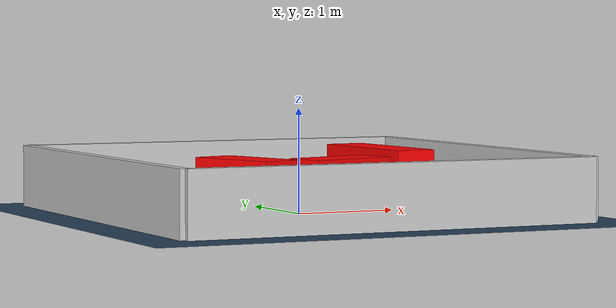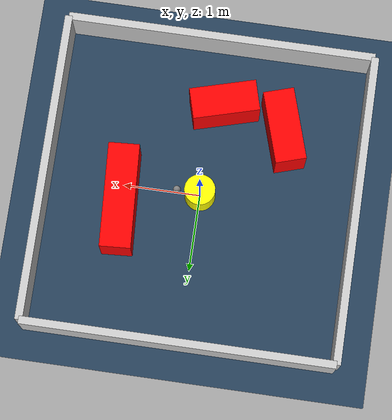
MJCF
<?xml version="1.0" ?>
<mujoco model="generated_environment">
  <option timestep="0.01" integrator="RK4" cone="elliptic"/>
  <default>
    <geom density="1"/>
  </default>
  <asset>
    <texture builtin="gradient" height="3072" rgb1="0.3 0.5 0.7" rgb2="0 0 0" type="skybox" width="512"/>
    <texture builtin="checker" height="300" mark="edge" markrgb="0.8 0.8 0.8" name="groundplane" rgb1="0.2 0.3 0.4" rgb2="0.1 0.2 0.3" type="2d" width="300"/>
    <material name="groundplane" reflectance="0.2" texrepeat="5 5" texture="groundplane" texuniform="true"/>
    <material name="robot" rgba="0.0 1.0 0.0 1"/>
  </asset>
  <worldbody>
    <light dir="0 0 -1" directional="true" pos="0 0 1.5"/>
    <geom condim="4" friction="1.0 0.005 0.001" material="groundplane" name="floor" size="0 0 0.05" type="plane"/>
    <body name="walls">
      <geom name="wall_1" condim="4" pos="-2.0 0.0 0.3" rgba="0.800000011920929 0.800000011920929 0.800000011920929 1.0" size="0.05 2.0 0.3" type="box"/>
      <geom name="wall_2" condim="4" pos="2.0 0.0 0.3" rgba="0.800000011920929 0.800000011920929 0.800000011920929 1.0" size="0.05 2.0 0.3" type="box"/>
      <geom name="wall_3" condim="4" pos="0.0 -2.0 0.3" rgba="0.800000011920929 0.800000011920929 0.800000011920929 1.0" size="2.0 0.05 0.3" type="box"/>
      <geom name="wall_4" condim="4" pos="0.0 2.0 0.3" rgba="0.800000011920929 0.800000011920929 0.800000011920929 1.0" size="2.0 0.05 0.3" type="box"/>
    </body>
    <body name="robot">
      <joint name="joint_x" type="slide" pos="0 0 0" axis="1 0 0"/>
      <joint name="joint_y" type="slide" pos="0 0 0" axis="0 1 0"/>
      <geom name="robot" type="sphere" pos="0.3 0.0 0.2" size="0.05" mass="5." friction="1.0 0.005 0.0001" condim="4" rgba="0.5 0.5 0.5 1.0"/>
      <site name="sensor_ball"/>
    </body>
    <body name="obstacle_movable_1">
      <geom name="obstacle_movable_1" condim="4" pos="0.0 0.0 0.2" euler="0 0 0.0" friction="1.0 0.005 0.001" rgba="1.0 1.0 0.0 1.0" size="0.2 0.2 0.0" type="cylinder" mass="0.1"/>
      <joint type="free"/>
    </body>
    <body name="obstacle_2_static">
      <geom name="obstacle_2_static" condim="4" pos="-0.9607495697098816 -0.9458958273833117 0.3" euler="0 0 287.40686986890785" friction="1.0 0.005 0.001" rgba="1 0 0 1" size="0.4703671472264417 0.2 0.3" type="box"/>
    </body>
    <body name="obstacle_3_static">
      <geom name="obstacle_3_static" condim="4" pos="-0.15296307517779018 -1.1776234336637716 0.3" euler="0 0 195.76480921742282" friction="1.0 0.005 0.001" rgba="1 0 0 1" size="0.43214138690232545 0.2 0.3" type="box"/>
    </body>
    <body name="obstacle_4_static">
      <geom name="obstacle_4_static" condim="4" pos="0.9926105251571449 0.2533799011879585 0.3" euler="0 0 273.54258074270956" friction="1.0 0.005 0.001" rgba="1 0 0 1" size="0.6735679766269776 0.2 0.3" type="box"/>
    </body>
  </worldbody>
  <actuator>
    <motor name="actuator_x" joint="joint_x" gear="1" ctrlrange="-1 1"/>
    <motor name="actuator_y" joint="joint_y" gear="1" ctrlrange="-1 1"/>
  </actuator>
</mujoco>
